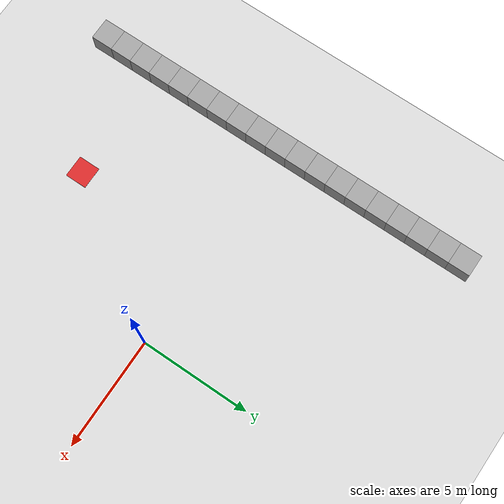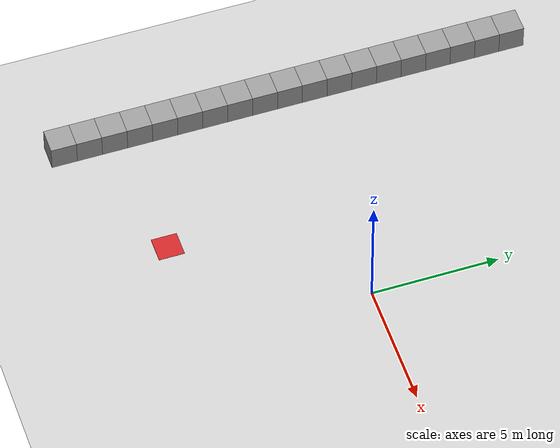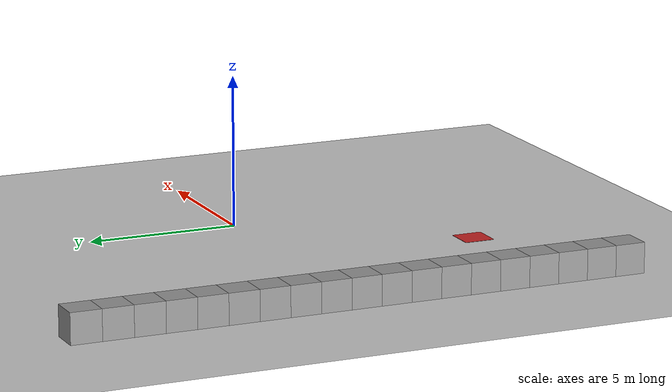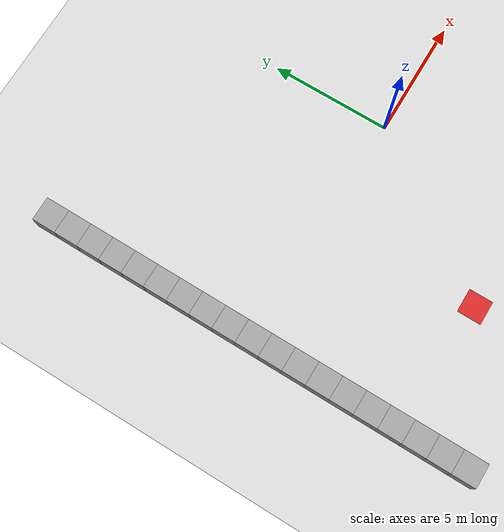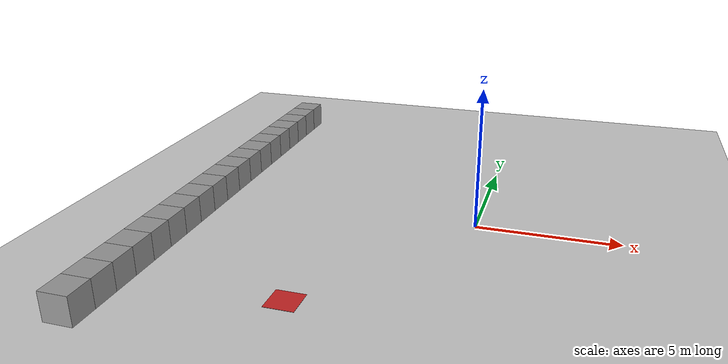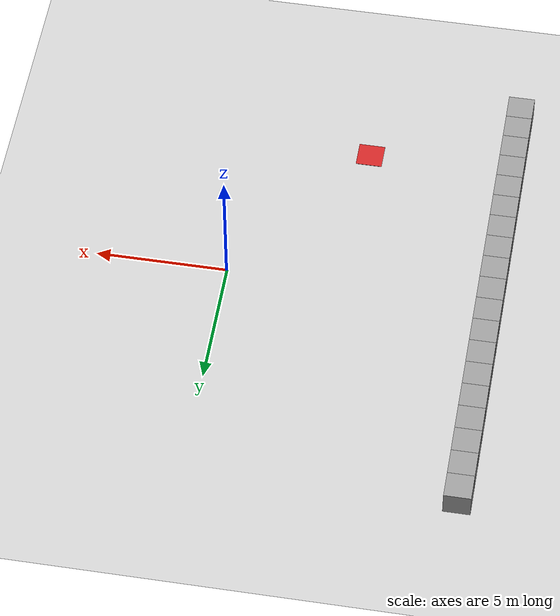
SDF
<sdf version="1.6">
 <world name="default">
  <model name="ground_plane">
   <static>1</static>
   <link name="link">
    <collision name="collision">
     <geometry><plane><normal>0 0 1</normal><size>100 100</size></plane></geometry>
     <surface><friction><ode><mu>100</mu><mu2>50</mu2></ode></friction></surface>
    </collision>
    <visual name="visual">
     <cast_shadows>0</cast_shadows>
     <geometry><plane><normal>0 0 1</normal><size>100 100</size></plane></geometry>
     <material>
      <script><uri>file://media/materials/scripts/gazebo.material</uri><name>Gazebo/Grey</name></script>
     </material>
    </visual>
   </link>
  </model>
  <model name="wall3">
   <link name="link">
    <inertial>
     <mass>1</mass>
     <inertia>
      <ixx>0.166667</ixx>
      <ixy>0</ixy>
      <ixz>0</ixz>
      <iyy>0.166667</iyy>
      <iyz>0</iyz>
      <izz>0.166667</izz>
     </inertia>
    </inertial>
    <visual name="visual">
     <geometry><box><size>1 1 1</size></box></geometry>
     <material>
      <script><name>Gazebo/Grey</name><uri>file://media/materials/scripts/gazebo.material</uri></script>
      <ambient>0.3 0.3 0.3 1</ambient>
      <diffuse>0.7 0.7 0.7 1</diffuse>
      <specular>0.01 0.01 0.01 1</specular>
      <emissive>0 0 0 1</emissive>
     </material>
    </visual>
    <collision name="collision">
     <geometry><box><size>1 1 1</size></box></geometry>
     <surface>
      <friction>
       <ode><mu>1</mu><mu2>1</mu2><fdir1>0 0 0</fdir1><slip1>0</slip1><slip2>0</slip2></ode>
       <torsional>
        <coefficient>1</coefficient>
        <patch_radius>0</patch_radius>
        <surface_radius>0</surface_radius>
        <use_patch_radius>1</use_patch_radius>
        <ode><slip>0</slip></ode>
       </torsional>
      </friction>
      <bounce><restitution_coefficient>0</restitution_coefficient><threshold>1e+06</threshold></bounce>
      <contact>
       <collide_without_contact>0</collide_without_contact>
       <collide_without_contact_bitmask>1</collide_without_contact_bitmask>
       <collide_bitmask>1</collide_bitmask>
       <ode>
        <soft_cfm>0</soft_cfm>
        <soft_erp>0.2</soft_erp>
        <kp>1e+13</kp>
        <kd>1</kd>
        <max_vel>0.01</max_vel>
        <min_depth>0</min_depth>
       </ode>
       <bullet>
        <split_impulse>1</split_impulse>
        <split_impulse_penetration_threshold>-0.01</split_impulse_penetration_threshold>
        <soft_cfm>0</soft_cfm>
        <soft_erp>0.2</soft_erp>
        <kp>1e+13</kp>
        <kd>1</kd>
       </bullet>
      </contact>
     </surface>
    </collision>
   </link>
   <link name="link_10">
    <pose>0 -4 0 0 -0 0</pose>
    <inertial>
     <mass>1</mass>
     <inertia>
      <ixx>0.166667</ixx>
      <ixy>0</ixy>
      <ixz>0</ixz>
      <iyy>0.166667</iyy>
      <iyz>0</iyz>
      <izz>0.166667</izz>
     </inertia>
    </inertial>
    <visual name="visual">
     <geometry><box><size>1 1 1</size></box></geometry>
     <material>
      <lighting>1</lighting>
      <script><uri>file://media/materials/scripts/gazebo.material</uri><name>Gazebo/Grey</name></script>
      <ambient>0.3 0.3 0.3 1</ambient>
      <diffuse>0.7 0.7 0.7 1</diffuse>
      <specular>0.01 0.01 0.01 1</specular>
      <emissive>0 0 0 1</emissive>
     </material>
    </visual>
    <collision name="collision">
     <geometry><box><size>1 1 1</size></box></geometry>
     <surface>
      <friction>
       <ode><mu>1</mu><mu2>1</mu2><fdir1>0 0 0</fdir1><slip1>0</slip1><slip2>0</slip2></ode>
       <torsional>
        <coefficient>1</coefficient>
        <patch_radius>0</patch_radius>
        <surface_radius>0</surface_radius>
        <use_patch_radius>1</use_patch_radius>
        <ode><slip>0</slip></ode>
       </torsional>
      </friction>
      <bounce><restitution_coefficient>0</restitution_coefficient><threshold>1e+06</threshold></bounce>
      <contact>
       <collide_without_contact>0</collide_without_contact>
       <collide_without_contact_bitmask>1</collide_without_contact_bitmask>
       <collide_bitmask>1</collide_bitmask>
       <ode>
        <soft_cfm>0</soft_cfm>
        <soft_erp>0.2</soft_erp>
        <kp>1e+13</kp>
        <kd>1</kd>
        <max_vel>0.01</max_vel>
        <min_depth>0</min_depth>
       </ode>
       <bullet>
        <split_impulse>1</split_impulse>
        <split_impulse_penetration_threshold>-0.01</split_impulse_penetration_threshold>
        <soft_cfm>0</soft_cfm>
        <soft_erp>0.2</soft_erp>
        <kp>1e+13</kp>
        <kd>1</kd>
       </bullet>
      </contact>
     </surface>
    </collision>
   </link>
   <link name="link_11">
    <pose>0 -5 0 0 -0 0</pose>
    <inertial>
     <mass>1</mass>
     <inertia>
      <ixx>0.166667</ixx>
      <ixy>0</ixy>
      <ixz>0</ixz>
      <iyy>0.166667</iyy>
      <iyz>0</iyz>
      <izz>0.166667</izz>
     </inertia>
    </inertial>
    <visual name="visual">
     <geometry><box><size>1 1 1</size></box></geometry>
     <material>
      <lighting>1</lighting>
      <script><uri>file://media/materials/scripts/gazebo.material</uri><name>Gazebo/Grey</name></script>
      <ambient>0.3 0.3 0.3 1</ambient>
      <diffuse>0.7 0.7 0.7 1</diffuse>
      <specular>0.01 0.01 0.01 1</specular>
      <emissive>0 0 0 1</emissive>
     </material>
    </visual>
    <collision name="collision">
     <geometry><box><size>1 1 1</size></box></geometry>
     <surface>
      <friction>
       <ode><mu>1</mu><mu2>1</mu2><fdir1>0 0 0</fdir1><slip1>0</slip1><slip2>0</slip2></ode>
       <torsional>
        <coefficient>1</coefficient>
        <patch_radius>0</patch_radius>
        <surface_radius>0</surface_radius>
        <use_patch_radius>1</use_patch_radius>
        <ode><slip>0</slip></ode>
       </torsional>
      </friction>
      <bounce><restitution_coefficient>0</restitution_coefficient><threshold>1e+06</threshold></bounce>
      <contact>
       <collide_without_contact>0</collide_without_contact>
       <collide_without_contact_bitmask>1</collide_without_contact_bitmask>
       <collide_bitmask>1</collide_bitmask>
       <ode>
        <soft_cfm>0</soft_cfm>
        <soft_erp>0.2</soft_erp>
        <kp>1e+13</kp>
        <kd>1</kd>
        <max_vel>0.01</max_vel>
        <min_depth>0</min_depth>
       </ode>
       <bullet>
        <split_impulse>1</split_impulse>
        <split_impulse_penetration_threshold>-0.01</split_impulse_penetration_threshold>
        <soft_cfm>0</soft_cfm>
        <soft_erp>0.2</soft_erp>
        <kp>1e+13</kp>
        <kd>1</kd>
       </bullet>
      </contact>
     </surface>
    </collision>
   </link>
   <link name="link_12">
    <pose>0 -6 0 0 -0 0</pose>
    <inertial>
     <mass>1</mass>
     <inertia>
      <ixx>0.166667</ixx>
      <ixy>0</ixy>
      <ixz>0</ixz>
      <iyy>0.166667</iyy>
      <iyz>0</iyz>
      <izz>0.166667</izz>
     </inertia>
    </inertial>
    <visual name="visual">
     <geometry><box><size>1 1 1</size></box></geometry>
     <material>
      <lighting>1</lighting>
      <script><uri>file://media/materials/scripts/gazebo.material</uri><name>Gazebo/Grey</name></script>
      <ambient>0.3 0.3 0.3 1</ambient>
      <diffuse>0.7 0.7 0.7 1</diffuse>
      <specular>0.01 0.01 0.01 1</specular>
      <emissive>0 0 0 1</emissive>
     </material>
    </visual>
    <collision name="collision">
     <geometry><box><size>1 1 1</size></box></geometry>
     <surface>
      <friction>
       <ode><mu>1</mu><mu2>1</mu2><fdir1>0 0 0</fdir1><slip1>0</slip1><slip2>0</slip2></ode>
       <torsional>
        <coefficient>1</coefficient>
        <patch_radius>0</patch_radius>
        <surface_radius>0</surface_radius>
        <use_patch_radius>1</use_patch_radius>
        <ode><slip>0</slip></ode>
       </torsional>
      </friction>
      <bounce><restitution_coefficient>0</restitution_coefficient><threshold>1e+06</threshold></bounce>
      <contact>
       <collide_without_contact>0</collide_without_contact>
       <collide_without_contact_bitmask>1</collide_without_contact_bitmask>
       <collide_bitmask>1</collide_bitmask>
       <ode>
        <soft_cfm>0</soft_cfm>
        <soft_erp>0.2</soft_erp>
        <kp>1e+13</kp>
        <kd>1</kd>
        <max_vel>0.01</max_vel>
        <min_depth>0</min_depth>
       </ode>
       <bullet>
        <split_impulse>1</split_impulse>
        <split_impulse_penetration_threshold>-0.01</split_impulse_penetration_threshold>
        <soft_cfm>0</soft_cfm>
        <soft_erp>0.2</soft_erp>
        <kp>1e+13</kp>
        <kd>1</kd>
       </bullet>
      </contact>
     </surface>
    </collision>
   </link>
   <link name="link_13">
    <pose>0 -7 0 0 -0 0</pose>
    <inertial>
     <mass>1</mass>
     <inertia>
      <ixx>0.166667</ixx>
      <ixy>0</ixy>
      <ixz>0</ixz>
      <iyy>0.166667</iyy>
      <iyz>0</iyz>
      <izz>0.166667</izz>
     </inertia>
    </inertial>
    <visual name="visual">
     <geometry><box><size>1 1 1</size></box></geometry>
     <material>
      <lighting>1</lighting>
      <script><uri>file://media/materials/scripts/gazebo.material</uri><name>Gazebo/Grey</name></script>
      <ambient>0.3 0.3 0.3 1</ambient>
      <diffuse>0.7 0.7 0.7 1</diffuse>
      <specular>0.01 0.01 0.01 1</specular>
      <emissive>0 0 0 1</emissive>
     </material>
    </visual>
    <collision name="collision">
     <geometry><box><size>1 1 1</size></box></geometry>
     <surface>
      <friction>
       <ode><mu>1</mu><mu2>1</mu2><fdir1>0 0 0</fdir1><slip1>0</slip1><slip2>0</slip2></ode>
       <torsional>
        <coefficient>1</coefficient>
        <patch_radius>0</patch_radius>
        <surface_radius>0</surface_radius>
        <use_patch_radius>1</use_patch_radius>
        <ode><slip>0</slip></ode>
       </torsional>
      </friction>
      <bounce><restitution_coefficient>0</restitution_coefficient><threshold>1e+06</threshold></bounce>
      <contact>
       <collide_without_contact>0</collide_without_contact>
       <collide_without_contact_bitmask>1</collide_without_contact_bitmask>
       <collide_bitmask>1</collide_bitmask>
       <ode>
        <soft_cfm>0</soft_cfm>
        <soft_erp>0.2</soft_erp>
        <kp>1e+13</kp>
        <kd>1</kd>
        <max_vel>0.01</max_vel>
        <min_depth>0</min_depth>
       </ode>
       <bullet>
        <split_impulse>1</split_impulse>
        <split_impulse_penetration_threshold>-0.01</split_impulse_penetration_threshold>
        <soft_cfm>0</soft_cfm>
        <soft_erp>0.2</soft_erp>
        <kp>1e+13</kp>
        <kd>1</kd>
       </bullet>
      </contact>
     </surface>
    </collision>
   </link>
   <link name="link_14">
    <pose>0 -8 0 0 -0 0</pose>
    <inertial>
     <mass>1</mass>
     <inertia>
      <ixx>0.166667</ixx>
      <ixy>0</ixy>
      <ixz>0</ixz>
      <iyy>0.166667</iyy>
      <iyz>0</iyz>
      <izz>0.166667</izz>
     </inertia>
    </inertial>
    <visual name="visual">
     <geometry><box><size>1 1 1</size></box></geometry>
     <material>
      <lighting>1</lighting>
      <script><uri>file://media/materials/scripts/gazebo.material</uri><name>Gazebo/Grey</name></script>
      <ambient>0.3 0.3 0.3 1</ambient>
      <diffuse>0.7 0.7 0.7 1</diffuse>
      <specular>0.01 0.01 0.01 1</specular>
      <emissive>0 0 0 1</emissive>
     </material>
    </visual>
    <collision name="collision">
     <geometry><box><size>1 1 1</size></box></geometry>
     <surface>
      <friction>
       <ode><mu>1</mu><mu2>1</mu2><fdir1>0 0 0</fdir1><slip1>0</slip1><slip2>0</slip2></ode>
       <torsional>
        <coefficient>1</coefficient>
        <patch_radius>0</patch_radius>
        <surface_radius>0</surface_radius>
        <use_patch_radius>1</use_patch_radius>
        <ode><slip>0</slip></ode>
       </torsional>
      </friction>
      <bounce><restitution_coefficient>0</restitution_coefficient><threshold>1e+06</threshold></bounce>
      <contact>
       <collide_without_contact>0</collide_without_contact>
       <collide_without_contact_bitmask>1</collide_without_contact_bitmask>
       <collide_bitmask>1</collide_bitmask>
       <ode>
        <soft_cfm>0</soft_cfm>
        <soft_erp>0.2</soft_erp>
        <kp>1e+13</kp>
        <kd>1</kd>
        <max_vel>0.01</max_vel>
        <min_depth>0</min_depth>
       </ode>
       <bullet>
        <split_impulse>1</split_impulse>
        <split_impulse_penetration_threshold>-0.01</split_impulse_penetration_threshold>
        <soft_cfm>0</soft_cfm>
        <soft_erp>0.2</soft_erp>
        <kp>1e+13</kp>
        <kd>1</kd>
       </bullet>
      </contact>
     </surface>
    </collision>
   </link>
   <link name="link_15">
    <pose>0 1 0 0 -0 0</pose>
    <inertial>
     <mass>1</mass>
     <inertia>
      <ixx>0.166667</ixx>
      <ixy>0</ixy>
      <ixz>0</ixz>
      <iyy>0.166667</iyy>
      <iyz>0</iyz>
      <izz>0.166667</izz>
     </inertia>
    </inertial>
    <visual name="visual">
     <geometry><box><size>1 1 1</size></box></geometry>
     <material>
      <lighting>1</lighting>
      <script><uri>file://media/materials/scripts/gazebo.material</uri><name>Gazebo/Grey</name></script>
      <ambient>0.3 0.3 0.3 1</ambient>
      <diffuse>0.7 0.7 0.7 1</diffuse>
      <specular>0.01 0.01 0.01 1</specular>
      <emissive>0 0 0 1</emissive>
     </material>
    </visual>
    <collision name="collision">
     <geometry><box><size>1 1 1</size></box></geometry>
     <surface>
      <friction>
       <ode><mu>1</mu><mu2>1</mu2><fdir1>0 0 0</fdir1><slip1>0</slip1><slip2>0</slip2></ode>
       <torsional>
        <coefficient>1</coefficient>
        <patch_radius>0</patch_radius>
        <surface_radius>0</surface_radius>
        <use_patch_radius>1</use_patch_radius>
        <ode><slip>0</slip></ode>
       </torsional>
      </friction>
      <bounce><restitution_coefficient>0</restitution_coefficient><threshold>1e+06</threshold></bounce>
      <contact>
       <collide_without_contact>0</collide_without_contact>
       <collide_without_contact_bitmask>1</collide_without_contact_bitmask>
       <collide_bitmask>1</collide_bitmask>
       <ode>
        <soft_cfm>0</soft_cfm>
        <soft_erp>0.2</soft_erp>
        <kp>1e+13</kp>
        <kd>1</kd>
        <max_vel>0.01</max_vel>
        <min_depth>0</min_depth>
       </ode>
       <bullet>
        <split_impulse>1</split_impulse>
        <split_impulse_penetration_threshold>-0.01</split_impulse_penetration_threshold>
        <soft_cfm>0</soft_cfm>
        <soft_erp>0.2</soft_erp>
        <kp>1e+13</kp>
        <kd>1</kd>
       </bullet>
      </contact>
     </surface>
    </collision>
   </link>
   <link name="link_16">
    <pose>0 2 0 0 -0 0</pose>
    <inertial>
     <mass>1</mass>
     <inertia>
      <ixx>0.166667</ixx>
      <ixy>0</ixy>
      <ixz>0</ixz>
      <iyy>0.166667</iyy>
      <iyz>0</iyz>
      <izz>0.166667</izz>
     </inertia>
    </inertial>
    <visual name="visual">
     <geometry><box><size>1 1 1</size></box></geometry>
     <material>
      <lighting>1</lighting>
      <script><uri>file://media/materials/scripts/gazebo.material</uri><name>Gazebo/Grey</name></script>
      <ambient>0.3 0.3 0.3 1</ambient>
      <diffuse>0.7 0.7 0.7 1</diffuse>
      <specular>0.01 0.01 0.01 1</specular>
      <emissive>0 0 0 1</emissive>
     </material>
    </visual>
    <collision name="collision">
     <geometry><box><size>1 1 1</size></box></geometry>
     <surface>
      <friction>
       <ode><mu>1</mu><mu2>1</mu2><fdir1>0 0 0</fdir1><slip1>0</slip1><slip2>0</slip2></ode>
       <torsional>
        <coefficient>1</coefficient>
        <patch_radius>0</patch_radius>
        <surface_radius>0</surface_radius>
        <use_patch_radius>1</use_patch_radius>
        <ode><slip>0</slip></ode>
       </torsional>
      </friction>
      <bounce><restitution_coefficient>0</restitution_coefficient><threshold>1e+06</threshold></bounce>
      <contact>
       <collide_without_contact>0</collide_without_contact>
       <collide_without_contact_bitmask>1</collide_without_contact_bitmask>
       <collide_bitmask>1</collide_bitmask>
       <ode>
        <soft_cfm>0</soft_cfm>
        <soft_erp>0.2</soft_erp>
        <kp>1e+13</kp>
        <kd>1</kd>
        <max_vel>0.01</max_vel>
        <min_depth>0</min_depth>
       </ode>
       <bullet>
        <split_impulse>1</split_impulse>
        <split_impulse_penetration_threshold>-0.01</split_impulse_penetration_threshold>
        <soft_cfm>0</soft_cfm>
        <soft_erp>0.2</soft_erp>
        <kp>1e+13</kp>
        <kd>1</kd>
       </bullet>
      </contact>
     </surface>
    </collision>
   </link>
   <link name="link_17">
    <pose>0 3 0 0 -0 0</pose>
    <inertial>
     <mass>1</mass>
     <inertia>
      <ixx>0.166667</ixx>
      <ixy>0</ixy>
      <ixz>0</ixz>
      <iyy>0.166667</iyy>
      <iyz>0</iyz>
      <izz>0.166667</izz>
     </inertia>
    </inertial>
    <visual name="visual">
     <geometry><box><size>1 1 1</size></box></geometry>
     <material>
      <lighting>1</lighting>
      <script><uri>file://media/materials/scripts/gazebo.material</uri><name>Gazebo/Grey</name></script>
      <ambient>0.3 0.3 0.3 1</ambient>
      <diffuse>0.7 0.7 0.7 1</diffuse>
      <specular>0.01 0.01 0.01 1</specular>
      <emissive>0 0 0 1</emissive>
     </material>
    </visual>
    <collision name="collision">
     <geometry><box><size>1 1 1</size></box></geometry>
     <surface>
      <friction>
       <ode><mu>1</mu><mu2>1</mu2><fdir1>0 0 0</fdir1><slip1>0</slip1><slip2>0</slip2></ode>
       <torsional>
        <coefficient>1</coefficient>
        <patch_radius>0</patch_radius>
        <surface_radius>0</surface_radius>
        <use_patch_radius>1</use_patch_radius>
        <ode><slip>0</slip></ode>
       </torsional>
      </friction>
      <bounce><restitution_coefficient>0</restitution_coefficient><threshold>1e+06</threshold></bounce>
      <contact>
       <collide_without_contact>0</collide_without_contact>
       <collide_without_contact_bitmask>1</collide_without_contact_bitmask>
       <collide_bitmask>1</collide_bitmask>
       <ode>
        <soft_cfm>0</soft_cfm>
        <soft_erp>0.2</soft_erp>
        <kp>1e+13</kp>
        <kd>1</kd>
        <max_vel>0.01</max_vel>
        <min_depth>0</min_depth>
       </ode>
       <bullet>
        <split_impulse>1</split_impulse>
        <split_impulse_penetration_threshold>-0.01</split_impulse_penetration_threshold>
        <soft_cfm>0</soft_cfm>
        <soft_erp>0.2</soft_erp>
        <kp>1e+13</kp>
        <kd>1</kd>
       </bullet>
      </contact>
     </surface>
    </collision>
   </link>
   <link name="link_18">
    <pose>0 4 0 0 -0 0</pose>
    <inertial>
     <mass>1</mass>
     <inertia>
      <ixx>0.166667</ixx>
      <ixy>0</ixy>
      <ixz>0</ixz>
      <iyy>0.166667</iyy>
      <iyz>0</iyz>
      <izz>0.166667</izz>
     </inertia>
    </inertial>
    <visual name="visual">
     <geometry><box><size>1 1 1</size></box></geometry>
     <material>
      <lighting>1</lighting>
      <script><uri>file://media/materials/scripts/gazebo.material</uri><name>Gazebo/Grey</name></script>
      <ambient>0.3 0.3 0.3 1</ambient>
      <diffuse>0.7 0.7 0.7 1</diffuse>
      <specular>0.01 0.01 0.01 1</specular>
      <emissive>0 0 0 1</emissive>
     </material>
    </visual>
    <collision name="collision">
     <geometry><box><size>1 1 1</size></box></geometry>
     <surface>
      <friction>
       <ode><mu>1</mu><mu2>1</mu2><fdir1>0 0 0</fdir1><slip1>0</slip1><slip2>0</slip2></ode>
       <torsional>
        <coefficient>1</coefficient>
        <patch_radius>0</patch_radius>
        <surface_radius>0</surface_radius>
        <use_patch_radius>1</use_patch_radius>
        <ode><slip>0</slip></ode>
       </torsional>
      </friction>
      <bounce><restitution_coefficient>0</restitution_coefficient><threshold>1e+06</threshold></bounce>
      <contact>
       <collide_without_contact>0</collide_without_contact>
       <collide_without_contact_bitmask>1</collide_without_contact_bitmask>
       <collide_bitmask>1</collide_bitmask>
       <ode>
        <soft_cfm>0</soft_cfm>
        <soft_erp>0.2</soft_erp>
        <kp>1e+13</kp>
        <kd>1</kd>
        <max_vel>0.01</max_vel>
        <min_depth>0</min_depth>
       </ode>
       <bullet>
        <split_impulse>1</split_impulse>
        <split_impulse_penetration_threshold>-0.01</split_impulse_penetration_threshold>
        <soft_cfm>0</soft_cfm>
        <soft_erp>0.2</soft_erp>
        <kp>1e+13</kp>
        <kd>1</kd>
       </bullet>
      </contact>
     </surface>
    </collision>
   </link>
   <link name="link_19">
    <pose>0 5 0 0 -0 0</pose>
    <inertial>
     <mass>1</mass>
     <inertia>
      <ixx>0.166667</ixx>
      <ixy>0</ixy>
      <ixz>0</ixz>
      <iyy>0.166667</iyy>
      <iyz>0</iyz>
      <izz>0.166667</izz>
     </inertia>
    </inertial>
    <visual name="visual">
     <geometry><box><size>1 1 1</size></box></geometry>
     <material>
      <lighting>1</lighting>
      <script><uri>file://media/materials/scripts/gazebo.material</uri><name>Gazebo/Grey</name></script>
      <ambient>0.3 0.3 0.3 1</ambient>
      <diffuse>0.7 0.7 0.7 1</diffuse>
      <specular>0.01 0.01 0.01 1</specular>
      <emissive>0 0 0 1</emissive>
     </material>
    </visual>
    <collision name="collision">
     <geometry><box><size>1 1 1</size></box></geometry>
     <surface>
      <friction>
       <ode><mu>1</mu><mu2>1</mu2><fdir1>0 0 0</fdir1><slip1>0</slip1><slip2>0</slip2></ode>
       <torsional>
        <coefficient>1</coefficient>
        <patch_radius>0</patch_radius>
        <surface_radius>0</surface_radius>
        <use_patch_radius>1</use_patch_radius>
        <ode><slip>0</slip></ode>
       </torsional>
      </friction>
      <bounce><restitution_coefficient>0</restitution_coefficient><threshold>1e+06</threshold></bounce>
      <contact>
       <collide_without_contact>0</collide_without_contact>
       <collide_without_contact_bitmask>1</collide_without_contact_bitmask>
       <collide_bitmask>1</collide_bitmask>
       <ode>
        <soft_cfm>0</soft_cfm>
        <soft_erp>0.2</soft_erp>
        <kp>1e+13</kp>
        <kd>1</kd>
        <max_vel>0.01</max_vel>
        <min_depth>0</min_depth>
       </ode>
       <bullet>
        <split_impulse>1</split_impulse>
        <split_impulse_penetration_threshold>-0.01</split_impulse_penetration_threshold>
        <soft_cfm>0</soft_cfm>
        <soft_erp>0.2</soft_erp>
        <kp>1e+13</kp>
        <kd>1</kd>
       </bullet>
      </contact>
     </surface>
    </collision>
   </link>
   <link name="link_20">
    <pose>0 6 0 0 -0 0</pose>
    <inertial>
     <mass>1</mass>
     <inertia>
      <ixx>0.166667</ixx>
      <ixy>0</ixy>
      <ixz>0</ixz>
      <iyy>0.166667</iyy>
      <iyz>0</iyz>
      <izz>0.166667</izz>
     </inertia>
    </inertial>
    <visual name="visual">
     <geometry><box><size>1 1 1</size></box></geometry>
     <material>
      <lighting>1</lighting>
      <script><uri>file://media/materials/scripts/gazebo.material</uri><name>Gazebo/Grey</name></script>
      <ambient>0.3 0.3 0.3 1</ambient>
      <diffuse>0.7 0.7 0.7 1</diffuse>
      <specular>0.01 0.01 0.01 1</specular>
      <emissive>0 0 0 1</emissive>
     </material>
    </visual>
    <collision name="collision">
     <geometry><box><size>1 1 1</size></box></geometry>
     <surface>
      <friction>
       <ode><mu>1</mu><mu2>1</mu2><fdir1>0 0 0</fdir1><slip1>0</slip1><slip2>0</slip2></ode>
       <torsional>
        <coefficient>1</coefficient>
        <patch_radius>0</patch_radius>
        <surface_radius>0</surface_radius>
        <use_patch_radius>1</use_patch_radius>
        <ode><slip>0</slip></ode>
       </torsional>
      </friction>
      <bounce><restitution_coefficient>0</restitution_coefficient><threshold>1e+06</threshold></bounce>
      <contact>
       <collide_without_contact>0</collide_without_contact>
       <collide_without_contact_bitmask>1</collide_without_contact_bitmask>
       <collide_bitmask>1</collide_bitmask>
       <ode>
        <soft_cfm>0</soft_cfm>
        <soft_erp>0.2</soft_erp>
        <kp>1e+13</kp>
        <kd>1</kd>
        <max_vel>0.01</max_vel>
        <min_depth>0</min_depth>
       </ode>
       <bullet>
        <split_impulse>1</split_impulse>
        <split_impulse_penetration_threshold>-0.01</split_impulse_penetration_threshold>
        <soft_cfm>0</soft_cfm>
        <soft_erp>0.2</soft_erp>
        <kp>1e+13</kp>
        <kd>1</kd>
       </bullet>
      </contact>
     </surface>
    </collision>
   </link>
   <link name="link_21">
    <pose>0 7 0 0 -0 0</pose>
    <inertial>
     <mass>1</mass>
     <inertia>
      <ixx>0.166667</ixx>
      <ixy>0</ixy>
      <ixz>0</ixz>
      <iyy>0.166667</iyy>
      <iyz>0</iyz>
      <izz>0.166667</izz>
     </inertia>
    </inertial>
    <visual name="visual">
     <geometry><box><size>1 1 1</size></box></geometry>
     <material>
      <lighting>1</lighting>
      <script><uri>file://media/materials/scripts/gazebo.material</uri><name>Gazebo/Grey</name></script>
      <ambient>0.3 0.3 0.3 1</ambient>
      <diffuse>0.7 0.7 0.7 1</diffuse>
      <specular>0.01 0.01 0.01 1</specular>
      <emissive>0 0 0 1</emissive>
     </material>
    </visual>
    <collision name="collision">
     <geometry><box><size>1 1 1</size></box></geometry>
     <surface>
      <friction>
       <ode><mu>1</mu><mu2>1</mu2><fdir1>0 0 0</fdir1><slip1>0</slip1><slip2>0</slip2></ode>
       <torsional>
        <coefficient>1</coefficient>
        <patch_radius>0</patch_radius>
        <surface_radius>0</surface_radius>
        <use_patch_radius>1</use_patch_radius>
        <ode><slip>0</slip></ode>
       </torsional>
      </friction>
      <bounce><restitution_coefficient>0</restitution_coefficient><threshold>1e+06</threshold></bounce>
      <contact>
       <collide_without_contact>0</collide_without_contact>
       <collide_without_contact_bitmask>1</collide_without_contact_bitmask>
       <collide_bitmask>1</collide_bitmask>
       <ode>
        <soft_cfm>0</soft_cfm>
        <soft_erp>0.2</soft_erp>
        <kp>1e+13</kp>
        <kd>1</kd>
        <max_vel>0.01</max_vel>
        <min_depth>0</min_depth>
       </ode>
       <bullet>
        <split_impulse>1</split_impulse>
        <split_impulse_penetration_threshold>-0.01</split_impulse_penetration_threshold>
        <soft_cfm>0</soft_cfm>
        <soft_erp>0.2</soft_erp>
        <kp>1e+13</kp>
        <kd>1</kd>
       </bullet>
      </contact>
     </surface>
    </collision>
   </link>
   <link name="link_22">
    <pose>0 8 0 0 -0 0</pose>
    <inertial>
     <mass>1</mass>
     <inertia>
      <ixx>0.166667</ixx>
      <ixy>0</ixy>
      <ixz>0</ixz>
      <iyy>0.166667</iyy>
      <iyz>0</iyz>
      <izz>0.166667</izz>
     </inertia>
    </inertial>
    <visual name="visual">
     <geometry><box><size>1 1 1</size></box></geometry>
     <material>
      <lighting>1</lighting>
      <script><uri>file://media/materials/scripts/gazebo.material</uri><name>Gazebo/Grey</name></script>
      <ambient>0.3 0.3 0.3 1</ambient>
      <diffuse>0.7 0.7 0.7 1</diffuse>
      <specular>0.01 0.01 0.01 1</specular>
      <emissive>0 0 0 1</emissive>
     </material>
    </visual>
    <collision name="collision">
     <geometry><box><size>1 1 1</size></box></geometry>
     <surface>
      <friction>
       <ode><mu>1</mu><mu2>1</mu2><fdir1>0 0 0</fdir1><slip1>0</slip1><slip2>0</slip2></ode>
       <torsional>
        <coefficient>1</coefficient>
        <patch_radius>0</patch_radius>
        <surface_radius>0</surface_radius>
        <use_patch_radius>1</use_patch_radius>
        <ode><slip>0</slip></ode>
       </torsional>
      </friction>
      <bounce><restitution_coefficient>0</restitution_coefficient><threshold>1e+06</threshold></bounce>
      <contact>
       <collide_without_contact>0</collide_without_contact>
       <collide_without_contact_bitmask>1</collide_without_contact_bitmask>
       <collide_bitmask>1</collide_bitmask>
       <ode>
        <soft_cfm>0</soft_cfm>
        <soft_erp>0.2</soft_erp>
        <kp>1e+13</kp>
        <kd>1</kd>
        <max_vel>0.01</max_vel>
        <min_depth>0</min_depth>
       </ode>
       <bullet>
        <split_impulse>1</split_impulse>
        <split_impulse_penetration_threshold>-0.01</split_impulse_penetration_threshold>
        <soft_cfm>0</soft_cfm>
        <soft_erp>0.2</soft_erp>
        <kp>1e+13</kp>
        <kd>1</kd>
       </bullet>
      </contact>
     </surface>
    </collision>
   </link>
   <link name="link_23">
    <pose>0 9 0 0 -0 0</pose>
    <inertial>
     <mass>1</mass>
     <inertia>
      <ixx>0.166667</ixx>
      <ixy>0</ixy>
      <ixz>0</ixz>
      <iyy>0.166667</iyy>
      <iyz>0</iyz>
      <izz>0.166667</izz>
     </inertia>
    </inertial>
    <visual name="visual">
     <geometry><box><size>1 1 1</size></box></geometry>
     <material>
      <lighting>1</lighting>
      <script><uri>file://media/materials/scripts/gazebo.material</uri><name>Gazebo/Grey</name></script>
      <ambient>0.3 0.3 0.3 1</ambient>
      <diffuse>0.7 0.7 0.7 1</diffuse>
      <specular>0.01 0.01 0.01 1</specular>
      <emissive>0 0 0 1</emissive>
     </material>
    </visual>
    <collision name="collision">
     <geometry><box><size>1 1 1</size></box></geometry>
     <surface>
      <friction>
       <ode><mu>1</mu><mu2>1</mu2><fdir1>0 0 0</fdir1><slip1>0</slip1><slip2>0</slip2></ode>
       <torsional>
        <coefficient>1</coefficient>
        <patch_radius>0</patch_radius>
        <surface_radius>0</surface_radius>
        <use_patch_radius>1</use_patch_radius>
        <ode><slip>0</slip></ode>
       </torsional>
      </friction>
      <bounce><restitution_coefficient>0</restitution_coefficient><threshold>1e+06</threshold></bounce>
      <contact>
       <collide_without_contact>0</collide_without_contact>
       <collide_without_contact_bitmask>1</collide_without_contact_bitmask>
       <collide_bitmask>1</collide_bitmask>
       <ode>
        <soft_cfm>0</soft_cfm>
        <soft_erp>0.2</soft_erp>
        <kp>1e+13</kp>
        <kd>1</kd>
        <max_vel>0.01</max_vel>
        <min_depth>0</min_depth>
       </ode>
       <bullet>
        <split_impulse>1</split_impulse>
        <split_impulse_penetration_threshold>-0.01</split_impulse_penetration_threshold>
        <soft_cfm>0</soft_cfm>
        <soft_erp>0.2</soft_erp>
        <kp>1e+13</kp>
        <kd>1</kd>
       </bullet>
      </contact>
     </surface>
    </collision>
   </link>
   <link name="link_24">
    <pose>0 -9 0 0 -0 0</pose>
    <inertial>
     <mass>1</mass>
     <inertia>
      <ixx>0.166667</ixx>
      <ixy>0</ixy>
      <ixz>0</ixz>
      <iyy>0.166667</iyy>
      <iyz>0</iyz>
      <izz>0.166667</izz>
     </inertia>
    </inertial>
    <visual name="visual">
     <geometry><box><size>1 1 1</size></box></geometry>
     <material>
      <lighting>1</lighting>
      <script><uri>file://media/materials/scripts/gazebo.material</uri><name>Gazebo/Grey</name></script>
      <ambient>0.3 0.3 0.3 1</ambient>
      <diffuse>0.7 0.7 0.7 1</diffuse>
      <specular>0.01 0.01 0.01 1</specular>
      <emissive>0 0 0 1</emissive>
     </material>
    </visual>
    <collision name="collision">
     <geometry><box><size>1 1 1</size></box></geometry>
     <surface>
      <friction>
       <ode><mu>1</mu><mu2>1</mu2><fdir1>0 0 0</fdir1><slip1>0</slip1><slip2>0</slip2></ode>
       <torsional>
        <coefficient>1</coefficient>
        <patch_radius>0</patch_radius>
        <surface_radius>0</surface_radius>
        <use_patch_radius>1</use_patch_radius>
        <ode><slip>0</slip></ode>
       </torsional>
      </friction>
      <bounce><restitution_coefficient>0</restitution_coefficient><threshold>1e+06</threshold></bounce>
      <contact>
       <collide_without_contact>0</collide_without_contact>
       <collide_without_contact_bitmask>1</collide_without_contact_bitmask>
       <collide_bitmask>1</collide_bitmask>
       <ode>
        <soft_cfm>0</soft_cfm>
        <soft_erp>0.2</soft_erp>
        <kp>1e+13</kp>
        <kd>1</kd>
        <max_vel>0.01</max_vel>
        <min_depth>0</min_depth>
       </ode>
       <bullet>
        <split_impulse>1</split_impulse>
        <split_impulse_penetration_threshold>-0.01</split_impulse_penetration_threshold>
        <soft_cfm>0</soft_cfm>
        <soft_erp>0.2</soft_erp>
        <kp>1e+13</kp>
        <kd>1</kd>
       </bullet>
      </contact>
     </surface>
    </collision>
   </link>
   <link name="link_7">
    <pose>0 -1 0 0 -0 0</pose>
    <inertial>
     <mass>1</mass>
     <inertia>
      <ixx>0.166667</ixx>
      <ixy>0</ixy>
      <ixz>0</ixz>
      <iyy>0.166667</iyy>
      <iyz>0</iyz>
      <izz>0.166667</izz>
     </inertia>
    </inertial>
    <visual name="visual">
     <geometry><box><size>1 1 1</size></box></geometry>
     <material>
      <lighting>1</lighting>
      <script><uri>file://media/materials/scripts/gazebo.material</uri><name>Gazebo/Grey</name></script>
      <ambient>0.3 0.3 0.3 1</ambient>
      <diffuse>0.7 0.7 0.7 1</diffuse>
      <specular>0.01 0.01 0.01 1</specular>
      <emissive>0 0 0 1</emissive>
     </material>
    </visual>
    <collision name="collision">
     <geometry><box><size>1 1 1</size></box></geometry>
     <surface>
      <friction>
       <ode><mu>1</mu><mu2>1</mu2><fdir1>0 0 0</fdir1><slip1>0</slip1><slip2>0</slip2></ode>
       <torsional>
        <coefficient>1</coefficient>
        <patch_radius>0</patch_radius>
        <surface_radius>0</surface_radius>
        <use_patch_radius>1</use_patch_radius>
        <ode><slip>0</slip></ode>
       </torsional>
      </friction>
      <bounce><restitution_coefficient>0</restitution_coefficient><threshold>1e+06</threshold></bounce>
      <contact>
       <collide_without_contact>0</collide_without_contact>
       <collide_without_contact_bitmask>1</collide_without_contact_bitmask>
       <collide_bitmask>1</collide_bitmask>
       <ode>
        <soft_cfm>0</soft_cfm>
        <soft_erp>0.2</soft_erp>
        <kp>1e+13</kp>
        <kd>1</kd>
        <max_vel>0.01</max_vel>
        <min_depth>0</min_depth>
       </ode>
       <bullet>
        <split_impulse>1</split_impulse>
        <split_impulse_penetration_threshold>-0.01</split_impulse_penetration_threshold>
        <soft_cfm>0</soft_cfm>
        <soft_erp>0.2</soft_erp>
        <kp>1e+13</kp>
        <kd>1</kd>
       </bullet>
      </contact>
     </surface>
    </collision>
   </link>
   <link name="link_8">
    <pose>0 -2 0 0 -0 0</pose>
    <inertial>
     <mass>1</mass>
     <inertia>
      <ixx>0.166667</ixx>
      <ixy>0</ixy>
      <ixz>0</ixz>
      <iyy>0.166667</iyy>
      <iyz>0</iyz>
      <izz>0.166667</izz>
     </inertia>
    </inertial>
    <visual name="visual">
     <geometry><box><size>1 1 1</size></box></geometry>
     <material>
      <lighting>1</lighting>
      <script><uri>file://media/materials/scripts/gazebo.material</uri><name>Gazebo/Grey</name></script>
      <ambient>0.3 0.3 0.3 1</ambient>
      <diffuse>0.7 0.7 0.7 1</diffuse>
      <specular>0.01 0.01 0.01 1</specular>
      <emissive>0 0 0 1</emissive>
     </material>
    </visual>
    <collision name="collision">
     <geometry><box><size>1 1 1</size></box></geometry>
     <surface>
      <friction>
       <ode><mu>1</mu><mu2>1</mu2><fdir1>0 0 0</fdir1><slip1>0</slip1><slip2>0</slip2></ode>
       <torsional>
        <coefficient>1</coefficient>
        <patch_radius>0</patch_radius>
        <surface_radius>0</surface_radius>
        <use_patch_radius>1</use_patch_radius>
        <ode><slip>0</slip></ode>
       </torsional>
      </friction>
      <bounce><restitution_coefficient>0</restitution_coefficient><threshold>1e+06</threshold></bounce>
      <contact>
       <collide_without_contact>0</collide_without_contact>
       <collide_without_contact_bitmask>1</collide_without_contact_bitmask>
       <collide_bitmask>1</collide_bitmask>
       <ode>
        <soft_cfm>0</soft_cfm>
        <soft_erp>0.2</soft_erp>
        <kp>1e+13</kp>
        <kd>1</kd>
        <max_vel>0.01</max_vel>
        <min_depth>0</min_depth>
       </ode>
       <bullet>
        <split_impulse>1</split_impulse>
        <split_impulse_penetration_threshold>-0.01</split_impulse_penetration_threshold>
        <soft_cfm>0</soft_cfm>
        <soft_erp>0.2</soft_erp>
        <kp>1e+13</kp>
        <kd>1</kd>
       </bullet>
      </contact>
     </surface>
    </collision>
   </link>
   <link name="link_9">
    <pose>0 -3 0 0 -0 0</pose>
    <inertial>
     <mass>1</mass>
     <inertia>
      <ixx>0.166667</ixx>
      <ixy>0</ixy>
      <ixz>0</ixz>
      <iyy>0.166667</iyy>
      <iyz>0</iyz>
      <izz>0.166667</izz>
     </inertia>
    </inertial>
    <visual name="visual">
     <geometry><box><size>1 1 1</size></box></geometry>
     <material>
      <lighting>1</lighting>
      <script><uri>file://media/materials/scripts/gazebo.material</uri><name>Gazebo/Grey</name></script>
      <ambient>0.3 0.3 0.3 1</ambient>
      <diffuse>0.7 0.7 0.7 1</diffuse>
      <specular>0.01 0.01 0.01 1</specular>
      <emissive>0 0 0 1</emissive>
     </material>
    </visual>
    <collision name="collision">
     <geometry><box><size>1 1 1</size></box></geometry>
     <surface>
      <friction>
       <ode><mu>1</mu><mu2>1</mu2><fdir1>0 0 0</fdir1><slip1>0</slip1><slip2>0</slip2></ode>
       <torsional>
        <coefficient>1</coefficient>
        <patch_radius>0</patch_radius>
        <surface_radius>0</surface_radius>
        <use_patch_radius>1</use_patch_radius>
        <ode><slip>0</slip></ode>
       </torsional>
      </friction>
      <bounce><restitution_coefficient>0</restitution_coefficient><threshold>1e+06</threshold></bounce>
      <contact>
       <collide_without_contact>0</collide_without_contact>
       <collide_without_contact_bitmask>1</collide_without_contact_bitmask>
       <collide_bitmask>1</collide_bitmask>
       <ode>
        <soft_cfm>0</soft_cfm>
        <soft_erp>0.2</soft_erp>
        <kp>1e+13</kp>
        <kd>1</kd>
        <max_vel>0.01</max_vel>
        <min_depth>0</min_depth>
       </ode>
       <bullet>
        <split_impulse>1</split_impulse>
        <split_impulse_penetration_threshold>-0.01</split_impulse_penetration_threshold>
        <soft_cfm>0</soft_cfm>
        <soft_erp>0.2</soft_erp>
        <kp>1e+13</kp>
        <kd>1</kd>
       </bullet>
      </contact>
     </surface>
    </collision>
   </link>
   <static>0</static>
   <pose>-10 0 0.5 0 -0 0</pose>
  </model>
  <model name="squre_pose_0_1">
   <link name="link">
    <inertial>
     <mass>1</mass>
     <inertia>
      <ixx>0.166667</ixx>
      <ixy>0</ixy>
      <ixz>0</ixz>
      <iyy>0.166667</iyy>
      <iyz>0</iyz>
      <izz>0.166667</izz>
     </inertia>
    </inertial>
    <visual name="visual">
     <geometry><box><size>1 1 0.01</size></box></geometry>
     <material>
      <script><name>Gazebo/Red</name><uri>file://media/materials/scripts/gazebo.material</uri></script>
      <ambient>1 0 0 1</ambient>
      <diffuse>0.7 0.7 0.7 1</diffuse>
      <specular>0.01 0.01 0.01 1</specular>
      <emissive>0 0 0 1</emissive>
      <shader type="vertex"><normal_map>__default__</normal_map></shader>
     </material>
    </visual>
   </link>
   <static>1</static>
   <pose>-4.5 -6.5 0 0 -0 0</pose>
  </model>
 </world>
</sdf>
